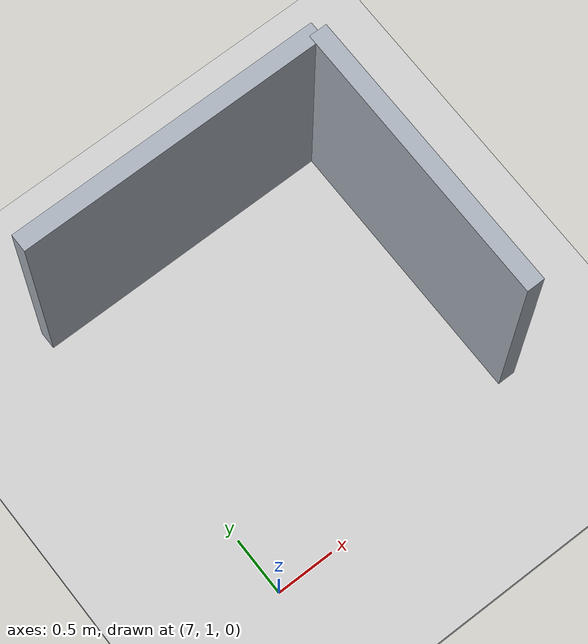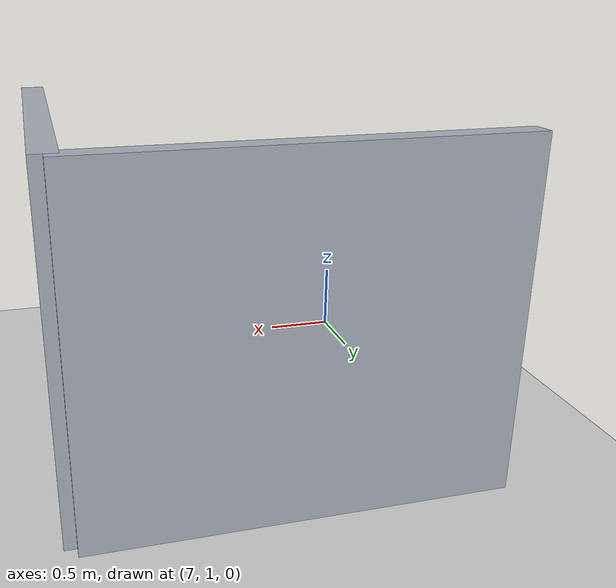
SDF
<sdf version="1.9">
 <world name="default">
  <model name="ground_plane">
   <static>true</static>
   <pose>5.05 0 -0.05 0 0 0</pose>
   <link name="body">
    <collision name="collision"><geometry><box><size>14.1 12 0.1</size></box></geometry></collision>
    <visual name="visual">
     <geometry><box><size>14.1 12 0.1</size></box></geometry>
     <material><ambient>0.8 0.8 0.8 1</ambient><diffuse>0.8 0.8 0.8 1</diffuse></material>
    </visual>
   </link>
  </model>
  <model name="room_1_2_1">
   <static>true</static>
   <pose>9.4 2.45 1.1 0 0 0</pose>
   <link name="body">
    <collision name="collision"><geometry><box><size>0.15 2.4 2.2</size></box></geometry></collision>
    <visual name="visual">
     <geometry><box><size>0.15 2.4 2.2</size></box></geometry>
     <material><ambient>0.65 0.68 0.72 1</ambient><diffuse>0.65 0.68 0.72 1</diffuse></material>
    </visual>
   </link>
  </model>
  <model name="room_end_1_2">
   <static>true</static>
   <pose>8.1 3.65 1.1 0 0 0</pose>
   <link name="body">
    <collision name="collision"><geometry><box><size>2.6 0.15 2.2</size></box></geometry></collision>
    <visual name="visual">
     <geometry><box><size>2.6 0.15 2.2</size></box></geometry>
     <material><ambient>0.65 0.68 0.72 1</ambient><diffuse>0.65 0.68 0.72 1</diffuse></material>
    </visual>
   </link>
  </model>
 </world>
</sdf>
